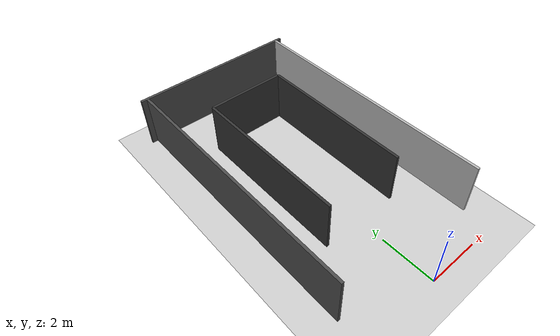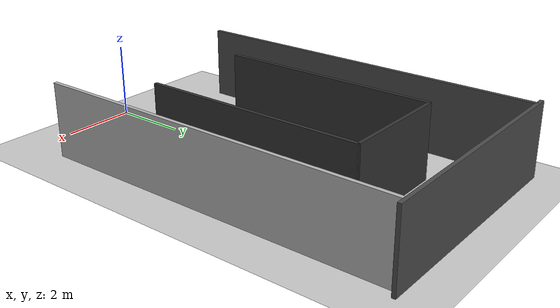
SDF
<?xml version="1.0" ?>
<sdf version="1.9">
  <world name="default">

    <!-- Ground and Sun from Fuel -->
    <include>
      <uri>https://fuel.gazebosim.org/1.0/OpenRobotics/models/Ground%20Plane</uri>
    </include>

    <include>
      <uri>https://fuel.gazebosim.org/1.0/OpenRobotics/models/Sun</uri>
    </include>

    <!-- Custom Wall -->
 <!-- Outer Walls (already defined by you) -->
  <model name="custom_wall_left">
    <static>true</static>
    <pose>-3 6 1 0 0 0</pose>
    <link name="wall_link">
      <collision name="wall_collision">
        <geometry><box><size>0.1 10 2</size></box></geometry>
      </collision>
      <visual name="wall_visual">
        <geometry><box><size>0.1 10 2</size></box></geometry>
        <material><ambient>0.3 0.3 0.3 1</ambient><diffuse>0.3 0.3 0.3 1</diffuse></material>
      </visual>
    </link>
  </model>

  <model name="custom_wall_right">
    <static>true</static>
    <pose>3 6 1 0 0 0</pose>
    <link name="wall_link_1">
      <collision name="wall_collision">
        <geometry>
          <box><size>0.1 10 2</size></box>
        </geometry>
      </collision>
      <visual name="wall_visual">
        <geometry>
          <box><size>0.1 10 2</size></box>
        </geometry>
        <material>
          <script>
            <uri>model://vision_based_navigation_ttt/materials/scripts</uri>
            <name>bernoulli08M</name>
          </script>
        </material>
      </visual>
    </link>
  </model>

  <model name="custom_wall_top">
    <static>true</static>
    <pose>0 11 1 0 0 1.57</pose>
    <link name="wall_link_4">
      <collision name="wall_collision">
        <geometry><box><size>0.1 6.5 2</size></box></geometry>
      </collision>
      <visual name="wall_visual">
        <geometry><box><size>0.1 6.5 2</size></box></geometry>
        <material><ambient>0.3 0.3 0.3 1</ambient><diffuse>0.3 0.3 0.3 1</diffuse></material>
      </visual>
    </link>
  </model>

  <!-- Inner U-Shaped Corridor -->
  <model name="inner_wall_left">
    <static>true</static>
    <pose>-1.5 6 1 0 0 0</pose>
    <link name="inner_wall_link_left">
      <collision name="wall_collision">
        <geometry><box><size>0.1 6 2</size></box></geometry>
      </collision>
      <visual name="wall_visual">
        <geometry><box><size>0.1 6 2</size></box></geometry>
        <material><ambient>0.2 0.2 0.2 1</ambient><diffuse>0.2 0.2 0.2 1</diffuse></material>
      </visual>
    </link>
  </model>

  <model name="inner_wall_right">
    <static>true</static>
    <pose>1.5 6 1 0 0 0</pose>
    <link name="inner_wall_link_right">
      <collision name="wall_collision">
        <geometry><box><size>0.1 6 2</size></box></geometry>
      </collision>
      <visual name="wall_visual">
        <geometry><box><size>0.1 6 2</size></box></geometry>
        <material><ambient>0.2 0.2 0.2 1</ambient><diffuse>0.2 0.2 0.2 1</diffuse></material>
      </visual>
    </link>
  </model>

  <model name="inner_wall_bottom">
    <static>true</static>
    <pose>0 9 1 0 0 1.57</pose>
    <link name="inner_wall_link_bottom">
      <collision name="wall_collision">
        <geometry><box><size>0.1 3 2</size></box></geometry>
      </collision>
      <visual name="wall_visual">
        <geometry><box><size>0.1 3 2</size></box></geometry>
        <material><ambient>0.2 0.2 0.2 1</ambient><diffuse>0.2 0.2 0.2 1</diffuse></material>
      </visual>
    </link>
  </model>

  </world>
</sdf>
